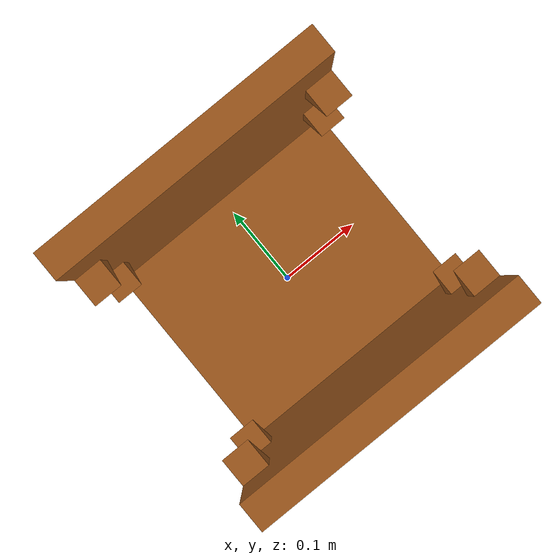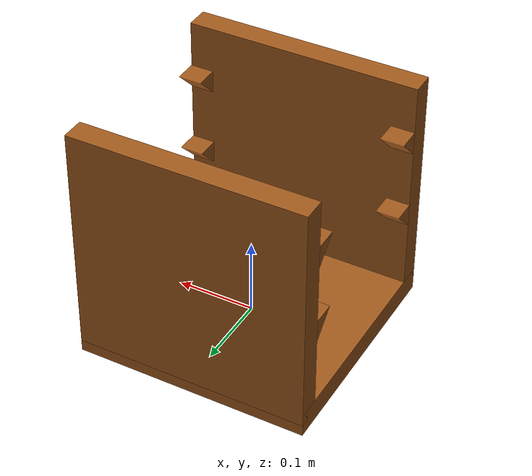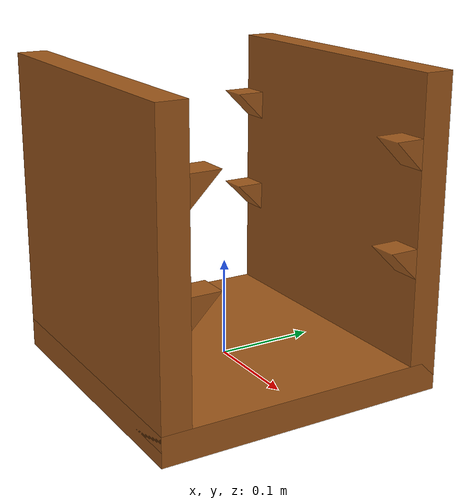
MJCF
<?xml version="1.0" encoding="utf-8"?>
<mujoco>
    <asset>
        <mesh file="holdouts/bookshelf/collision/shelf1.stl" name="shelf1" scale="1.5 1.5 1.5"/>
        <mesh file="holdouts/bookshelf/collision/shelf2.stl" name="shelf2" scale="1.5 1.5 1.5"/>
        <mesh file="holdouts/bookshelf/collision/shelf3.stl" name="shelf3" scale="1.5 1.5 1.5"/>
        <mesh file="holdouts/bookshelf/collision/shelf4.stl" name="shelf4" scale="1.5 1.5 1.5"/>
        <mesh file="holdouts/bookshelf/collision/shelf5.stl" name="shelf5" scale="1.5 1.5 1.5"/>
        <mesh file="holdouts/bookshelf/collision/shelf6.stl" name="shelf6" scale="1.5 1.5 1.5"/>
        <mesh file="holdouts/bookshelf/collision/shelf7.stl" name="shelf7" scale="1.5 1.5 1.5"/>
        <mesh file="holdouts/bookshelf/collision/shelf8.stl" name="shelf8" scale="1.5 1.5 1.5"/>
        <mesh file="holdouts/bookshelf/collision/shelf9.stl" name="shelf9" scale="1.5 1.5 1.5"/>
        <mesh file="holdouts/bookshelf/collision/shelf10.stl" name="shelf10" scale="1.5 1.5 1.5"/>
        <mesh file="holdouts/bookshelf/collision/shelf11.stl" name="shelf11" scale="1.5 1.5 1.5"/>
        <material name="wood_mat" rgba="0.616 0.341 0.106 1.0" specular="0.25" shininess="0.10" reflectance="0.10"></material>
    </asset>
    <worldbody>
        <body name="shelf">
            <geom type="mesh" mesh="shelf1" material="wood_mat"/>
            <geom type="mesh" mesh="shelf2" material="wood_mat"/>
            <geom type="mesh" mesh="shelf3" material="wood_mat"/>
            <geom type="mesh" mesh="shelf4" material="wood_mat"/>
            <geom type="mesh" mesh="shelf5" material="wood_mat"/>
            <geom type="mesh" mesh="shelf6" material="wood_mat"/>
            <geom type="mesh" mesh="shelf7" material="wood_mat"/>
            <geom type="mesh" mesh="shelf8" material="wood_mat"/>
            <geom type="mesh" mesh="shelf9" material="wood_mat"/>
            <geom type="mesh" mesh="shelf10" material="wood_mat"/>
            <geom type="mesh" mesh="shelf11" material="wood_mat"/>
            <joint type="free"></joint>
        </body>
    </worldbody>
</mujoco>
